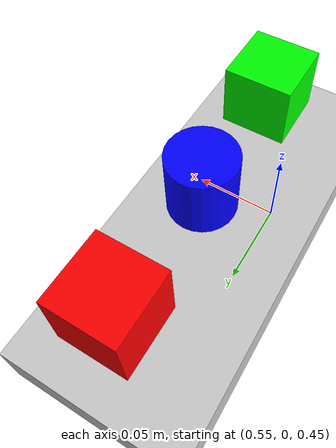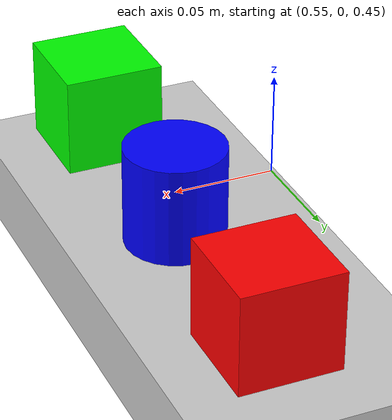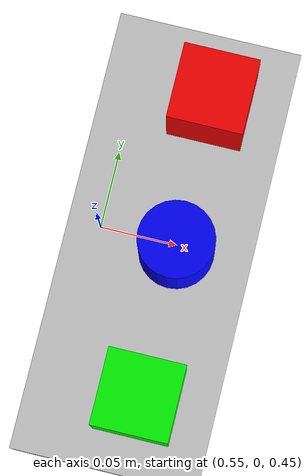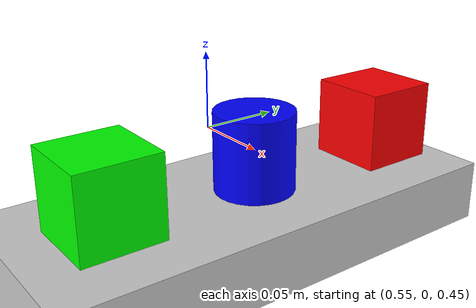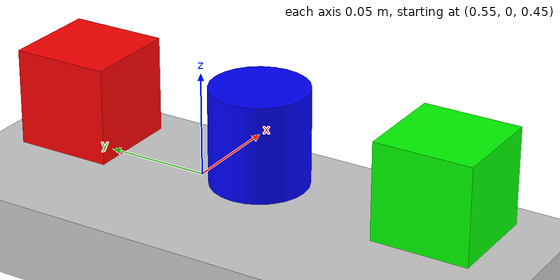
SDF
<?xml version="1.0" ?>
<sdf version="1.6">
  <world name="so101_world">
    <!-- A global light source -->
    <include>
      <uri>model://sun</uri>
    </include>

    <!-- A ground plane -->
    <include>
      <uri>model://ground_plane</uri>
    </include>

    <!-- Physics -->
    <physics type="ode">
      <max_step_size>0.001</max_step_size>
      <real_time_factor>1</real_time_factor>
      <real_time_update_rate>1000</real_time_update_rate>
      <gravity>0 0 -9.81</gravity>
    </physics>

    <!-- GUI -->
    <gui fullscreen='0'>
      <camera name='user_camera'>
        <pose>5 -5 2 0 0.785 0.785</pose>
        <view_controller>orbit</view_controller>
        <projection_type>perspective</projection_type>
      </camera>
    </gui>

    <!-- Lighting -->
    <light type='directional' name='sun'>
      <cast_shadows>true</cast_shadows>
      <pose>0 0 10 0 0 0</pose>
      <diffuse>0.8 0.8 0.8 1</diffuse>
      <specular>0.2 0.2 0.2 1</specular>
      <attenuation>
        <range>1000</range>
        <constant>0.9</constant>
        <linear>0.01</linear>
        <quadratic>0.001</quadratic>
      </attenuation>
      <direction>-0.5 0.1 -0.9</direction>
    </light>

    <!-- Environment -->
    <plugin name="gazebo_ros_state" filename="libgazebo_ros_state.so" />
    <plugin name="gazebo_ros_planar_move" filename="libgazebo_ros_planar_move.so" />

    <!-- Add some objects for manipulation -->
    <model name="table">
      <static>true</static>
      <pose>0.5 0 0.4 0 0 0</pose>
      <link name="link">
        <collision name="collision">
          <geometry>
            <box>
              <size>1.0 0.6 0.04</size>
            </box>
          </geometry>
        </collision>
        <visual name="visual">
          <geometry>
            <box>
              <size>1.0 0.6 0.04</size>
            </box>
          </geometry>
          <material>
            <ambient>0.8 0.8 0.8 1</ambient>
            <diffuse>0.8 0.8 0.8 1</diffuse>
            <specular>0.2 0.2 0.2 1</specular>
          </material>
        </visual>
        <self_collide>0</self_collide>
        <enable_wind>0</enable_wind>
        <kinematic>0</kinematic>
      </link>
    </model>

    <model name="box1">
      <pose>0.6 0.1 0.45 0 0 0</pose>
      <link name="link">
        <inertial>
          <mass>0.1</mass>
          <inertia>
            <ixx>0.001</ixx>
            <ixy>0</ixy>
            <ixz>0</ixz>
            <iyy>0.001</iyy>
            <iyz>0</iyz>
            <izz>0.001</izz>
          </inertia>
        </inertial>
        <collision name="collision">
          <geometry>
            <box>
              <size>0.05 0.05 0.05</size>
            </box>
          </geometry>
        </collision>
        <visual name="visual">
          <geometry>
            <box>
              <size>0.05 0.05 0.05</size>
            </box>
          </geometry>
          <material>
            <ambient>1 0 0 1</ambient>
            <diffuse>1 0 0 1</diffuse>
            <specular>0.1 0.1 0.1 1</specular>
          </material>
        </visual>
        <self_collide>0</self_collide>
        <enable_wind>0</enable_wind>
        <kinematic>0</kinematic>
      </link>
    </model>

    <model name="box2">
      <pose>0.6 -0.1 0.45 0 0 0</pose>
      <link name="link">
        <inertial>
          <mass>0.1</mass>
          <inertia>
            <ixx>0.001</ixx>
            <ixy>0</ixy>
            <ixz>0</ixz>
            <iyy>0.001</iyy>
            <iyz>0</iyz>
            <izz>0.001</izz>
          </inertia>
        </inertial>
        <collision name="collision">
          <geometry>
            <box>
              <size>0.05 0.05 0.05</size>
            </box>
          </geometry>
        </collision>
        <visual name="visual">
          <geometry>
            <box>
              <size>0.05 0.05 0.05</size>
            </box>
          </geometry>
          <material>
            <ambient>0 1 0 1</ambient>
            <diffuse>0 1 0 1</diffuse>
            <specular>0.1 0.1 0.1 1</specular>
          </material>
        </visual>
        <self_collide>0</self_collide>
        <enable_wind>0</enable_wind>
        <kinematic>0</kinematic>
      </link>
    </model>

    <model name="cylinder1">
      <pose>0.6 0 0.45 0 0 0</pose>
      <link name="link">
        <inertial>
          <mass>0.1</mass>
          <inertia>
            <ixx>0.001</ixx>
            <ixy>0</ixy>
            <ixz>0</ixz>
            <iyy>0.001</iyy>
            <iyz>0</iyz>
            <izz>0.001</izz>
          </inertia>
        </inertial>
        <collision name="collision">
          <geometry>
            <cylinder>
              <radius>0.025</radius>
              <length>0.05</length>
            </cylinder>
          </geometry>
        </collision>
        <visual name="visual">
          <geometry>
            <cylinder>
              <radius>0.025</radius>
              <length>0.05</length>
            </cylinder>
          </geometry>
          <material>
            <ambient>0 0 1 1</ambient>
            <diffuse>0 0 1 1</diffuse>
            <specular>0.1 0.1 0.1 1</specular>
          </material>
        </visual>
        <self_collide>0</self_collide>
        <enable_wind>0</enable_wind>
        <kinematic>0</kinematic>
      </link>
    </model>

  </world>
</sdf>
